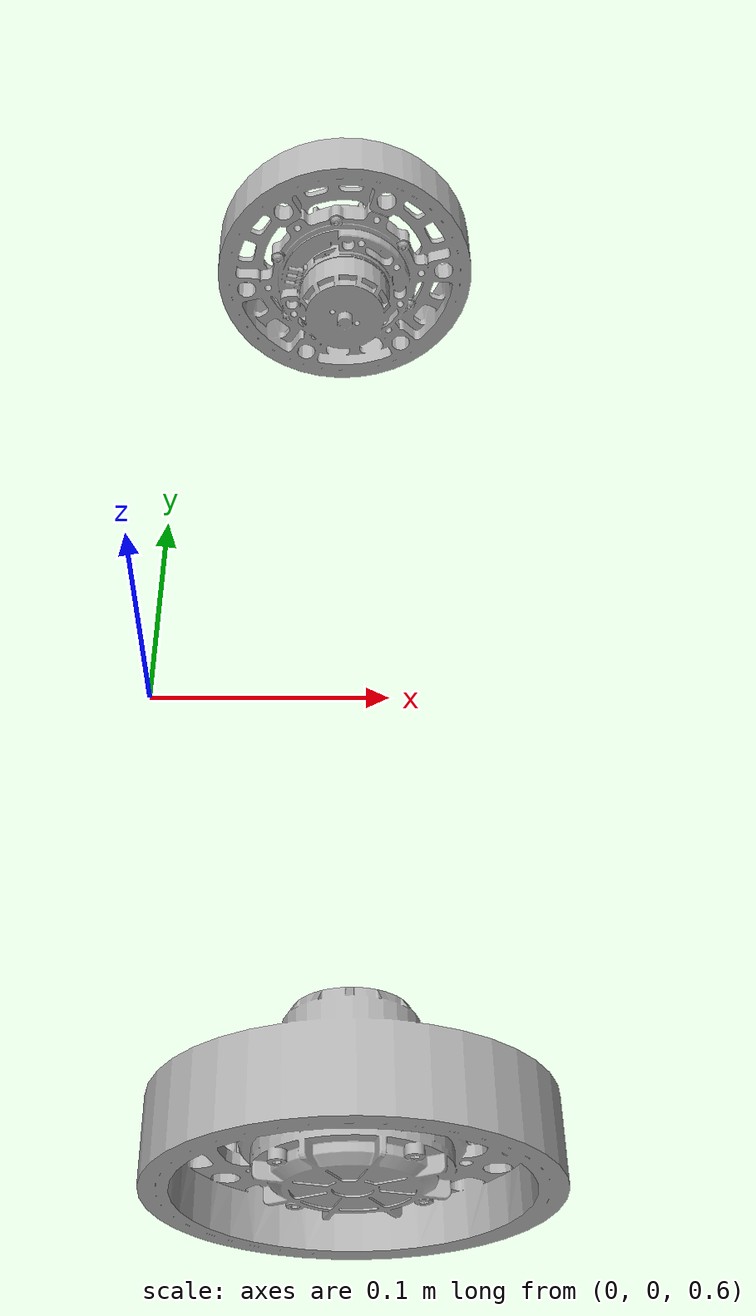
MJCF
<mujoco model="wheelbipeV14_2_sysid_wheels_fixed">
  <compiler angle="radian" />
  <option timestep="0.002" gravity="0 0 -9.81" />

  <!-- 轮轴机械固定，仅保留左右轮两个转动自由度。 -->
  <default>
    <joint type="hinge" axis="0 1 0" ref="0" limited="false"
           damping="0" frictionloss="0.023" armature="0.001" />
    <geom contype="0" conaffinity="0" />
    <motor gear="1" forcelimited="true" forcerange="-5 5" />
  </default>

  <asset>
    <material name="wheel_material" rgba="0.7 0.7 0.7 1" />
    <mesh name="left_wheel_link.STL" file="../meshes/left_wheel_link.STL" />
    <mesh name="right_wheel_link.STL" file="../meshes/right_wheel_link.STL" />
  </asset>

  <worldbody>
    <!-- 支架位姿取自车身固定在 z=1 m 时的悬空静置结果，轮角为零。
         位姿已写入本文件，加载时无需读取静置 NPZ 或整车模型。
         实机夹具姿态不同时，可修改对应支架的 pos 和 quat。 -->
    <body name="left_wheel_mount" pos="0.08156139559048908 0.22205 0.6667639975526973"
          quat="0.9970542427553872 0 0.07669965451996114 0">
      <body name="left_wheel_link">
        <joint name="left_wheel_joint" />
        <!-- 质量、质心和完整惯量张量沿用整车 XML 中的左轮参数。 -->
        <inertial pos="0.00015349 -0.02021922 -0.00011469" mass="0.51208444"
                  fullinertia="0.00038955 0.00063306 0.00038893 0.00000081 -0.00000093 -0.00000059" />
        <geom name="left_wheel_link_visual" type="mesh" mesh="left_wheel_link.STL" material="wheel_material" />
      </body>
    </body>

    <body name="right_wheel_mount" pos="0.08142903908296735 -0.22205 0.6667397780281625"
          quat="0.9970400520147771 0 0.07688390389652849 0">
      <body name="right_wheel_link">
        <joint name="right_wheel_joint" />
        <!-- 质量、质心和完整惯量张量沿用整车 XML 中的右轮参数。 -->
        <inertial pos="0.00017786 0.02021922 -0.00007128" mass="0.51208444"
                  fullinertia="0.00038992 0.00063306 0.00038855 -0.00000092 -0.00000070 0.00000038" />
        <geom name="right_wheel_link_visual" type="mesh" mesh="right_wheel_link.STL" material="wheel_material" />
      </body>
    </body>
  </worldbody>

  <!-- ctrl 直接输入轮轴力矩 torque [Nm]，执行器增益和传动比均为 1。
       保留 ±5 Nm 力矩限幅；无气弹簧或腿部执行器。 -->
  <actuator>
    <motor name="left_wheel_joint_ctrl" joint="left_wheel_joint" />
    <motor name="right_wheel_joint_ctrl" joint="right_wheel_joint" />
  </actuator>
</mujoco>
